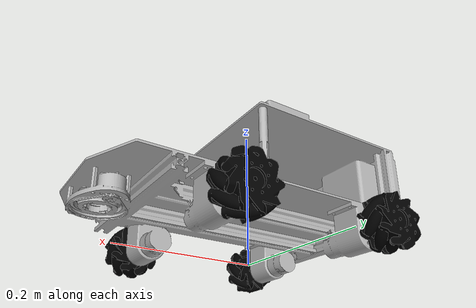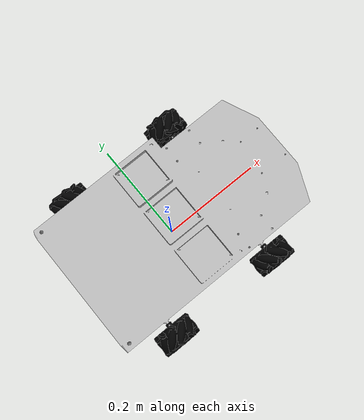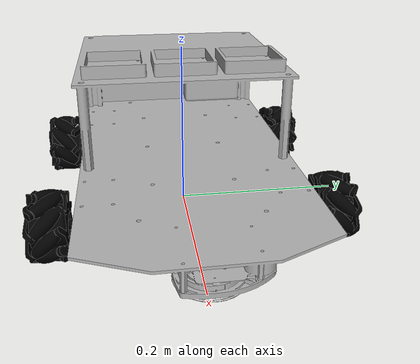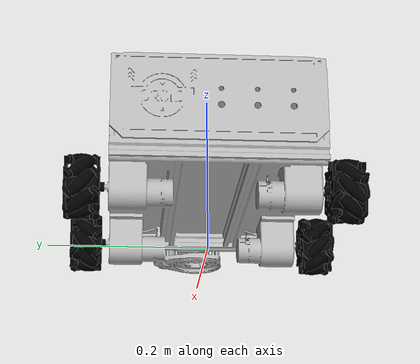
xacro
<?xml version="1.0" ?>
<robot xmlns:xacro="http://www.ros.org/wiki/xacro">

<xacro:include filename="$(find salamander_bot)/description/colors.xacro" />
<xacro:include filename="$(find salamander_bot)/description/salamander_bot.ros2control" />
<xacro:include filename="$(find salamander_bot)/description/salamander_bot.gazebo" />

<!-- Adicionado SLAM -->

<link name="base_link">
</link>

<joint name="base_footprint_joint" type="fixed">
  <parent link="base_link"/>
  <child link="base_footprint"/>
  <origin xyz="0.0 0.0 0.0" rpy="0.0 0.0 0.0"/>
</joint>

<link name="base_footprint">
</link>

<!-- fim SLAM -->

<link name="chassis">
  <inertial>
    <origin xyz="-0.031027251343893784 0.006588573186617724 0.08110908537527221" rpy="0 0 0"/>
    <mass value="4.3632165889636445"/>
    <inertia ixx="0.042227" iyy="0.075384" izz="0.090994" ixy="0.004338" iyz="-0.000531" ixz="0.008602"/>
  </inertial>
  <visual>
    <origin xyz="0 0 0" rpy="0 0 0"/>
    <geometry>
      <mesh filename="file://$(find salamander_bot)/meshes/base_link.stl" scale="0.001 0.001 0.001"/>
    </geometry>
    <material name="silver"/>
  </visual>
  <collision>
    <origin xyz="0 0 0" rpy="0 0 0"/>
    <geometry>
      <mesh filename="file://$(find salamander_bot)/meshes/base_link.stl" scale="0.001 0.001 0.001"/>
    </geometry>
  </collision>
</link>

<joint name="chassis_joint" type="fixed">
  <parent link="base_link"/>
  <child link="chassis"/>
  <origin xyz="0.0 0.0 0.0"/>
</joint>

<link name="wheel_lf_1">
  <inertial>
    <origin xyz="0.11315 0.142 -0.03865" rpy="0 0 0"/>
    <mass value="0.216322"/>
    <inertia ixx="8.8e-05" iyy="0.00011" izz="8.8e-05" ixy="0.0" iyz="0.0" ixz="0.0"/>
  </inertial>
  <visual>
    <origin xyz="0 0 0" rpy="0 0 0"/>
    <geometry>
      <mesh filename="file://$(find salamander_bot)/meshes/wheel_lf_1.stl" scale="0.001 0.001 0.001"/>
    </geometry>
    <material name="black"/>
  </visual>
  <collision>
    <origin xyz="0 0 0" rpy="0 0 0"/>
    <geometry>
      <mesh filename="file://$(find salamander_bot)/meshes/wheel_lf_1.stl" scale="0.001 0.001 0.001"/>
    </geometry>
  </collision>
</link>

<joint name="wheel_lf_joint" type="continuous">
  <origin xyz="0.0 0.0 0.0" rpy="0 0 0"/> <parent link="base_link"/>
  <child link="wheel_lf_1"/>
  <axis xyz="0.0 1.0 0.0"/>
</joint>

<link name="wheel_lb_1">
  <inertial>
    <origin xyz="-0.11315 0.142 -0.03865" rpy="0 0 0"/>
    <mass value="0.216322"/>
    <inertia ixx="8.8e-05" iyy="0.00011" izz="8.8e-05" ixy="0.0" iyz="0.0" ixz="0.0"/>
  </inertial>
  <visual>
    <origin xyz="0 0 0" rpy="0 0 0"/>
    <geometry>
      <mesh filename="file://$(find salamander_bot)/meshes/wheel_lb_1.stl" scale="0.001 0.001 0.001"/>
    </geometry>
    <material name="black"/>
  </visual>
  <collision>
    <origin xyz="0 0 0" rpy="0 0 0"/>
    <geometry>
      <mesh filename="file://$(find salamander_bot)/meshes/wheel_lb_1.stl" scale="0.001 0.001 0.001"/>
    </geometry>
  </collision>
</link>

<joint name="wheel_lb_joint" type="continuous">
  <origin xyz="0.0 0.0 0.0" rpy="0 0 0"/>
  <parent link="base_link"/>
  <child link="wheel_lb_1"/>
  <axis xyz="0.0 1.0 0.0"/>
</joint>

<link name="wheel_rf_1">
  <inertial>
    <origin xyz="0.11315 -0.142 -0.03865" rpy="0 0 0"/>
    <mass value="0.216322"/>
    <inertia ixx="8.8e-05" iyy="0.00011" izz="8.8e-05" ixy="0.0" iyz="0.0" ixz="0.0"/>
  </inertial>
  <visual>
    <origin xyz="0 0 0" rpy="0 0 0"/>
    <geometry>
      <mesh filename="file://$(find salamander_bot)/meshes/wheel_rf_1.stl" scale="0.001 0.001 0.001"/>
    </geometry>
    <material name="black"/>
  </visual>
  <collision>
    <origin xyz="0 0 0" rpy="0 0 0"/>
    <geometry>
      <mesh filename="file://$(find salamander_bot)/meshes/wheel_rf_1.stl" scale="0.001 0.001 0.001"/>
    </geometry>
  </collision>
</link>

<joint name="wheel_rf_joint" type="continuous">
  <origin xyz="0.0 0.0 0.0" rpy="0 0 0"/>
  <parent link="base_link"/>
  <child link="wheel_rf_1"/>
  <axis xyz="0.0 1.0 0.0"/>
</joint>

<link name="wheel_rb_1">
  <inertial>
    <origin xyz="-0.11315 -0.142 -0.03865" rpy="0 0 0"/>
    <mass value="0.216322"/>
    <inertia ixx="8.8e-05" iyy="0.00011" izz="8.8e-05" ixy="0.0" iyz="0.0" ixz="0.0"/>
  </inertial>
  <visual>
    <origin xyz="0 0 0" rpy="0 0 0"/>
    <geometry>
      <mesh filename="file://$(find salamander_bot)/meshes/wheel_rb_1.stl" scale="0.001 0.001 0.001"/>
    </geometry>
    <material name="black"/>
  </visual>
  <collision>
    <origin xyz="0 0 0" rpy="0 0 0"/>
    <geometry>
      <mesh filename="file://$(find salamander_bot)/meshes/wheel_rb_1.stl" scale="0.001 0.001 0.001"/>
    </geometry>
  </collision>
</link>

<joint name="wheel_rb_joint" type="continuous">
  <origin xyz="0.0 0.0 0.0" rpy="0 0 0"/>
  <parent link="base_link"/>
  <child link="wheel_rb_1"/>
  <axis xyz="0.0 1.0 0.0"/>
</joint>

</robot>

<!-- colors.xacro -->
<robot xmlns:xacro="http://www.ros.org/wiki/xacro">

    <material name="white">
        <color rgba="1.0 1.0 1.0 1.0"/>
    </material>

    <material name="orange">
        <color rgba="1.0 0.3 0.1 1.0"/>
    </material>

    <material name="blue">
        <color rgba="0.2 0.2 1.0 1.0"/>
    </material>

    <material name="black">
        <color rgba="0.0 0.0 0.0 1.0"/>
    </material>

    <material name="silver">
        <color rgba="0.7 0.7 0.7 1.0"/>
    </material>

</robot>

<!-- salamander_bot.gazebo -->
<robot xmlns:xacro="http://www.ros.org/wiki/xacro" >

<xacro:property name="body_color" value="Gazebo/Silver" />

<gazebo reference="base_link">
  <material>${body_color}</material>
  <mu1>0.2</mu1>
  <mu2>0.2</mu2>
  <self_collide>true</self_collide>
  <gravity>true</gravity>
</gazebo>

<gazebo reference="wheel_lf_1">
  <material>${body_color}</material>
  <mu1>0.2</mu1>
  <mu2>0.2</mu2>
  <self_collide>true</self_collide>
</gazebo>

<gazebo reference="wheel_lb_1">
  <material>${body_color}</material>
  <mu1>0.2</mu1>
  <mu2>0.2</mu2>
  <self_collide>true</self_collide>
</gazebo>

<gazebo reference="wheel_rf_1">
  <material>${body_color}</material>
  <mu1>0.2</mu1>
  <mu2>0.2</mu2>
  <self_collide>true</self_collide>
</gazebo>

<gazebo reference="wheel_rb_1">
  <material>${body_color}</material>
  <mu1>0.2</mu1>
  <mu2>0.2</mu2>
  <self_collide>true</self_collide>
</gazebo>

<gazebo reference="rplidar_a1m8_1">
  <material>${body_color}</material>
  <mu1>0.2</mu1>
  <mu2>0.2</mu2>
  <self_collide>true</self_collide>
</gazebo>

<gazebo>
  <plugin name="gz::sim::systems::DiffDrive" filename="gz-sim-diff-drive-system">

    <left_joint>wheel_lf_1_joint</left_joint>
    <left_joint>wheel_lb_1_joint</left_joint>
    <right_joint>wheel_rf_1_joint</right_joint>
    <right_joint>wheel_rb_1_joint</right_joint>

    <wheel_separation>0.3</wheel_separation> <!-- Ajustar -->
    <wheel_radius>0.05</wheel_radius> <!-- Ajustar -->

    <max_linear_acceleration>10.0</max_linear_acceleration> <!-- Ajustar -->

    <topic>/cmd_vel</topic>
    <tf_topic>/tf</tf_topic>
    <odom_topic>/odom_rf2o</odom_topic>
    <frame_id>/odom_rf2o</frame_id>
    <child_frame_id>base_footprint</child_frame_id>
    <odom_publisher_frequency>10.0</odom_publisher_frequency>
  </plugin>

  <plugin name="gz::sim::systems::JointStatePublisher" filename="gz-sim-joint-state-publisher-system">
    <topic>/joint_states</topic>
    <joint_name>wheel_lf_1_joint</joint_name>
    <joint_name>wheel_lb_1_joint</joint_name>
    <joint_name>wheel_rf_1_joint</joint_name>
    <joint_name>wheel_rb_1_joint</joint_name>
  </plugin>
</gazebo>

<gazebo reference="rplidar_a1m8_1">
  <sensor name="lidar" type="gpu_lidar">
    <pose relative_to="rplidar_a1m8_1">0 0 0 0 0 0</pose>

    <update_rate>10</update_rate>

    <topic>/simscan</topic>

    <lidar>
      <scan>
        <horizontal>
          <samples>720</samples>
          <resolution>1</resolution>
          <min_angle>-3.14</min_angle>
          <max_angle>3.14</max_angle>
        </horizontal>
      </scan>

      <range>
        <min>0.01</min>
        <max>12.0</max>
        <resolution>0.005</resolution>
      </range>

      <noise>
        <type>gaussian</type>
        <mean>0.0</mean>
        <stddev>0.001</stddev>
      </noise>
    </lidar>

    <always_on>true</always_on>
    <visualize>true</visualize>

  </sensor>
</gazebo>

</robot>
